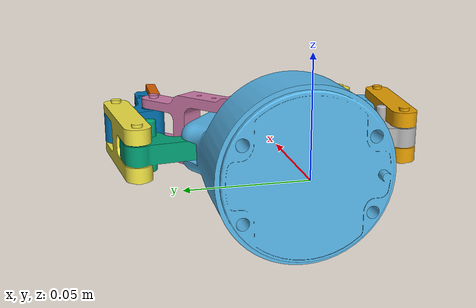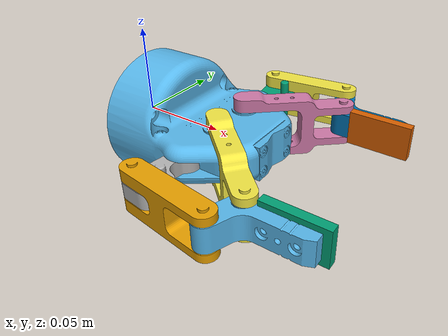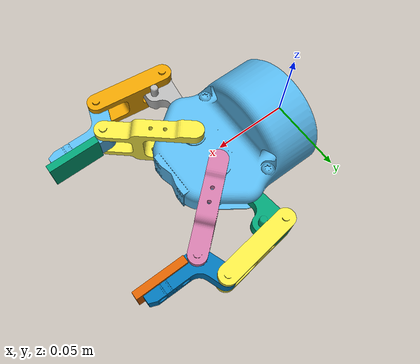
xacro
<?xml version="1.0"?>
<robot name="Robotiq_2F85" xmlns:xacro="http://ros.org/wiki/xacro" >

	<!-- On the first day, Darwin created the world -->
    <link name="world"/>

	<!-- Add Robotiq 2f-85 gripper -->
    <xacro:include filename="./robotiq_2f_model/robotiq_2f_85.urdf.xacro" />
	<xacro:robotiq_2f_85 parent="world" name="gripper" precise_collision="true" adaptive_transmission="true" with_pads="true" >
		<origin xyz="0 0 0" rpy="0 ${pi/2} 0"/>
	</xacro:robotiq_2f_85>

</robot>

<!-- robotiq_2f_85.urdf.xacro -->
<!-- WARNING: Inertias are wrong in this file. They need to be changed. -->

<robot xmlns:xacro="http://ros.org/wiki/xacro">

	<xacro:include filename="inertias.urdf.xacro" />

	<xacro:macro name="robotiq_2f_85" params="parent name precise_collision:=false adaptive_transmission:=false with_pads:=true *origin">

		<!-- base -->
		<joint name="${parent}_${name}_base_joint" type="fixed">
			<xacro:insert_block name="origin"/>
			<parent link="${parent}"/>
			<child link="${name}_base"/>
		</joint>
		<link name="${name}_base">
			<inertial>
				<mass value="0.5"/>
				<origin xyz="0 0 ${0.015*0.5}"  />
				<xacro:cylinder_inertia radius="0.04" length="0.045" mass="0.5"/>
			</inertial>
			<visual>
				<origin xyz="0 0 0" rpy="0 -1.5708 0"/>
				<geometry>
					<mesh filename="package://robotiq_2f_model/meshes/2f85/visual/base.obj"/>
				</geometry>
			</visual>
			<xacro:unless value="${precise_collision}">
			<collision>
				<origin xyz="0 0 0.015" rpy="0 0 0"/>
				<geometry>
					<cylinder radius="0.04" length="0.045"/>
				</geometry>
			</collision>
			<collision>
				<origin xyz="0 0 0.06" rpy="0 0 0"/>
				<geometry>
					<box size="0.03 0.03 0.06"/>
				</geometry>
			</collision>
			</xacro:unless>
			<xacro:if value="${precise_collision}">
			<collision>
				<geometry>
					<mesh filename="package://robotiq_2f_model/meshes/2f85/collision/base.stl" scale="0.001 0.001 0.001"/>
				</geometry>
			</collision>
			</xacro:if>
		</link>

		<!-- right finger -->

		<joint name="${name}_right_driver_joint" type="revolute">
			<origin xyz="0 0.0306011 0.054904" rpy="0 0 0"/>
			<parent link="${name}_base"/>
			<child link="${name}_right_driver"/>
			<axis xyz="1 0 0"/>

			<limit lower="${0 * 3.141592 / 180}" upper="${50 * 3.141592 / 180}" effort="176" velocity="${110 * 3.141592 / 180}" />
		</joint>
		<link name="${name}_right_driver">
			<inertial>
				<mass value="0.1"/>
				<origin xyz="0 0.02 0" rpy="0 0 0" />
				<xacro:box_inertia x_dim="0.02" y_dim="0.04" z_dim="0.02" mass="0.1"/>
			</inertial>
			<visual>
				<geometry>
					<mesh filename="package://robotiq_2f_model/meshes/2f85/visual/driver.obj" scale="0.001 0.001 0.001"/>
				</geometry>
			</visual>
			<xacro:unless value="${precise_collision}">
			<collision>
				<origin xyz="0 0.01 0" rpy="-0.1 0 0"/>
				<geometry>
					<box size="0.002 0.004 0.002"/>
				</geometry>
			</collision>
			</xacro:unless>
			<xacro:if value="${precise_collision}">
			<collision>
				<geometry>
					<mesh filename="package://robotiq_2f_model/meshes/2f85/collision/driver.stl" scale="0.001 0.001 0.001"/>
				</geometry>
			</collision>
			</xacro:if>
		</link>

		<xacro:unless value="${adaptive_transmission}">
		<joint name="${name}_right_coupler_joint" type="fixed">
			<origin xyz="0 0.0315 -0.0041" rpy="0 0 0"/>
			<parent link="${name}_right_driver"/>
			<child link="${name}_right_coupler"/>
		</joint>
		</xacro:unless>
		<xacro:if value="${adaptive_transmission}">
			<joint name="${name}_right_coupler_joint" type="revolute">
			<origin xyz="0 0.0315 -0.0041" rpy="0 0 0"/>
			<parent link="${name}_right_driver"/>
			<child link="${name}_right_coupler"/>
			<axis xyz="1 0 0"/>
			<limit lower="${-170 * 3.141592 / 180}" upper="${170 * 3.141592 / 180}" effort="176" velocity="${110 * 3.141592 / 180}" />
		</joint>
		</xacro:if>
		<link name="${name}_right_coupler">
			<inertial>
				<mass value="0.1"/>
				<origin xyz="0 0.0 0.025" rpy="-1.7 0 0"/>
				<xacro:box_inertia x_dim="0.03" y_dim="0.065" z_dim="0.02" mass="0.1"/>
			</inertial>
			<visual>
				<geometry>
					<mesh filename="package://robotiq_2f_model/meshes/2f85/visual/coupler.obj" scale="0.001 0.001 0.001"/>
				</geometry>
			</visual>
			<xacro:unless value="${precise_collision}">
			<collision>
				<origin xyz="0 0.0 0.025" rpy="-1.7 0 0"/>
				<geometry>
					<box size="0.03 0.065 0.02"/>
				</geometry>
			</collision>
			</xacro:unless>
			<xacro:if value="${precise_collision}">
				<collision>
					<geometry>
						<mesh filename="package://robotiq_2f_model/meshes/2f85/collision/coupler.stl" scale="0.001 0.001 0.001"/>
					</geometry>
				</collision>
			</xacro:if>
		</link>

		<joint name="${name}_right_follower_joint" type="revolute">
			<origin xyz="0 0.0061 0.0471" rpy="0 0 0"/>
			<parent link="${name}_right_coupler"/>
			<child link="${name}_right_follower"/>
			<axis xyz="1 0 0"/>
			<limit lower="${-170 * 3.141592 / 180}" upper="${170 * 3.141592 / 180}" effort="176" velocity="${110 * 3.141592 / 180}" />

			<xacro:unless value="${adaptive_transmission}">
			<mimic joint="${name}_right_driver_joint" multiplier="-1"/>
			</xacro:unless>
		</joint>
		<link name="${name}_right_follower">
			<inertial>
				<mass value="0.1"/>
				<origin xyz="0 -0.018 0.022" />
				<xacro:box_inertia x_dim="0.02" y_dim="0.015" z_dim="0.048" mass="0.1"/>
			</inertial>
			<visual>
				<geometry>
					<mesh filename="package://robotiq_2f_model/meshes/2f85/visual/follower.obj" scale="0.001 0.001 0.001"/>
				</geometry>
			</visual>
			<xacro:unless value="${precise_collision}">
			<collision>
				<origin xyz="0 -0.01 0.022" rpy="0 0 0"/>
				<geometry>
					<box size="0.002 0.0015 0.0048"/>
				</geometry>
			</collision>
			</xacro:unless>
			<xacro:if value="${precise_collision}">
			<collision>
				<geometry>
					<mesh filename="package://robotiq_2f_model/meshes/2f85/collision/follower.stl" scale="0.001 0.001 0.001"/>
				</geometry>
			</collision>
			</xacro:if>
		</link>

		<xacro:if value="${with_pads}">
			<joint name="${name}_right_pad_joint" type="fixed">
				<parent link="${name}_right_follower"/>
				<child link="${name}_right_pad"/>
			</joint>
			<link name="${name}_right_pad">
				<inertial>
					<mass value="0.1"/>
					<origin xyz="0 -0.022 0.031" />
					<xacro:box_inertia x_dim="0.02" y_dim="0.008" z_dim="0.036" mass="0.1"/>
				</inertial>
				<visual>
					<geometry>
						<mesh filename="package://robotiq_2f_model/meshes/2f85/visual/pad.obj" scale="0.001 0.001 0.001"/>
					</geometry>
				</visual>
				<xacro:unless value="${precise_collision}">
				<collision>
					<origin xyz="0 -0.022 0.031" rpy="0 0 0"/>
					<geometry>
						<box size="0.02 0.008 0.036"/>
					</geometry>
				</collision>
				</xacro:unless>
				<xacro:if value="${precise_collision}">
				<collision>
					<geometry>
						<mesh filename="package://robotiq_2f_model/meshes/2f85/collision/pad.stl" scale="0.001 0.001 0.001"/>
					</geometry>
				</collision>
				</xacro:if>
			</link>
		</xacro:if>

		<joint name="${name}_right_spring_link_joint" type="revolute">
			<origin xyz="0 0.012 0.0614" rpy="0 0 0"/>
			<parent link="${name}_base"/>
			<child link="${name}_right_spring_link"/>
			<axis xyz="1 0 0"/>
			<limit lower="${-170 * 3.141592 / 180}" upper="${170 * 3.141592 / 180}" effort="176" velocity="${110 * 3.141592 / 180}" />

			<xacro:unless value="${adaptive_transmission}">
			<mimic joint="${name}_right_driver_joint" multiplier="1"/>
			</xacro:unless>
		</joint>
		<link name="${name}_right_spring_link">
			<inertial>
				<mass value="0.1"/>
				<origin xyz="0 0.018 0.018" rpy="-0.7068 0 0"/>
				<xacro:box_inertia x_dim="0.04" y_dim="0.02" z_dim="0.065" mass="0.1"/>
			</inertial>
			<visual>
				<geometry>
					<mesh filename="package://robotiq_2f_model/meshes/2f85/visual/spring_link.obj" scale="0.001 0.001 0.001"/>
				</geometry>
			</visual>
			<xacro:unless value="${precise_collision}">
			<collision>
				<origin xyz="0 0.025 0.015" rpy="-0.7068 0 0"/>
				<geometry>
					<box size="0.004 0.002 0.0065"/>
				</geometry>
			</collision>
			</xacro:unless>
			<xacro:if value="${precise_collision}">
			<collision>
				<geometry>
					<mesh filename="package://robotiq_2f_model/meshes/2f85/collision/spring_link.stl" scale="0.001 0.001 0.001"/>
				</geometry>
			</collision>
			</xacro:if>
		</link>

		<!-- left finger -->

		<joint name="${name}_left_driver_joint" type="revolute">
			<origin xyz="0 -0.0306011 0.054904" rpy="0 0 3.141592653589793"/>
			<parent link="${name}_base"/>
			<child link="${name}_left_driver"/>
			<axis xyz="1 0 0"/>
			<limit lower="${0 * 3.141592 / 180}" upper="${50 * 3.141592 / 180}" effort="176" velocity="${110 * 3.141592 / 180}" />

			<xacro:unless value="${adaptive_transmission}">
			<mimic joint="${name}_right_driver_joint" multiplier="1"/>
			</xacro:unless>
		</joint>
		<link name="${name}_left_driver">
			<inertial>
				<mass value="0.1"/>
				<origin xyz="0 0.02 0" rpy="0 0 0" />
				<xacro:box_inertia x_dim="0.02" y_dim="0.04" z_dim="0.02" mass="0.1"/>
			</inertial>
			<visual>
				<geometry>
					<mesh filename="package://robotiq_2f_model/meshes/2f85/visual/driver.obj" scale="0.001 0.001 0.001"/>
				</geometry>
			</visual>
			<xacro:unless value="${precise_collision}">
			<collision>
				<origin xyz="0 0.01 0" rpy="-0.1 0 0"/>
				<geometry>
					<box size="0.002 0.004 0.002"/>
				</geometry>
			</collision>
			</xacro:unless>
			<xacro:if value="${precise_collision}">
			<collision>
				<geometry>
					<mesh filename="package://robotiq_2f_model/meshes/2f85/collision/driver.stl" scale="0.001 0.001 0.001"/>
				</geometry>
			</collision>
			</xacro:if>
		</link>

		<xacro:unless value="${adaptive_transmission}">
		<joint name="${name}_left_coupler_joint" type="fixed">
			<origin xyz="0 0.0315 -0.0041" rpy="0 0 0"/>
			<parent link="${name}_left_driver"/>
			<child link="${name}_left_coupler"/>
		</joint>
		</xacro:unless>
		<xacro:if value="${adaptive_transmission}">
			<joint name="${name}_left_coupler_joint" type="revolute">
			<origin xyz="0 0.0315 -0.0041" rpy="0 0 0"/>
			<parent link="${name}_left_driver"/>
			<child link="${name}_left_coupler"/>
			<axis xyz="1 0 0"/>
			<limit lower="${-170 * 3.141592 / 180}" upper="${170 * 3.141592 / 180}" effort="176" velocity="${110 * 3.141592 / 180}" />
		</joint>
		</xacro:if>
		<link name="${name}_left_coupler">
			<inertial>
				<mass value="0.1"/>
				<origin xyz="0 0.0 0.025" rpy="-1.7 0 0"/>
				<xacro:box_inertia x_dim="0.03" y_dim="0.065" z_dim="0.02" mass="0.1"/>
			</inertial>
			<visual>
				<geometry>
					<mesh filename="package://robotiq_2f_model/meshes/2f85/visual/coupler.obj" scale="0.001 0.001 0.001"/>
				</geometry>
			</visual>
			<xacro:unless value="${precise_collision}">
			<collision>
				<origin xyz="0 0.0 0.025" rpy="-1.7 0 0"/>
				<geometry>
					<box size="0.03 0.065 0.02"/>
				</geometry>
			</collision>
			</xacro:unless>
			<xacro:if value="${precise_collision}">
				<collision>
					<geometry>
						<mesh filename="package://robotiq_2f_model/meshes/2f85/collision/coupler.stl" scale="0.001 0.001 0.001"/>
					</geometry>
				</collision>
			</xacro:if>
		</link>

		<joint name="${name}_left_follower_joint" type="revolute">
			<origin xyz="0 0.0061 0.0471" rpy="0 0 0"/>
			<parent link="${name}_left_coupler"/>
			<child link="${name}_left_follower"/>
			<axis xyz="1 0 0"/>
			<limit lower="${-170 * 3.141592 / 180}" upper="${170 * 3.141592 / 180}" effort="176" velocity="${110 * 3.141592 / 180}" />

			<xacro:unless value="${adaptive_transmission}">
			<mimic joint="${name}_right_driver_joint" multiplier="-1"/>
			</xacro:unless>
		</joint>
		<link name="${name}_left_follower">
			<inertial>
				<mass value="0.1"/>
				<origin xyz="0 -0.018 0.022" />
				<xacro:box_inertia x_dim="0.02" y_dim="0.015" z_dim="0.048" mass="0.1"/>
			</inertial>
			<visual>
				<geometry>
					<mesh filename="package://robotiq_2f_model/meshes/2f85/visual/follower.obj" scale="0.001 0.001 0.001"/>
				</geometry>
			</visual>
			<xacro:unless value="${precise_collision}">
			<collision>
				<origin xyz="0 -0.01 0.022" rpy="0 0 0"/>
				<geometry>
					<box size="0.002 0.0015 0.0048"/>
				</geometry>
			</collision>
			</xacro:unless>
			<xacro:if value="${precise_collision}">
			<collision>
				<geometry>
					<mesh filename="package://robotiq_2f_model/meshes/2f85/collision/follower.stl" scale="0.001 0.001 0.001"/>
				</geometry>
			</collision>
			</xacro:if>
		</link>

		<xacro:if value="${with_pads}">
			<joint name="${name}_left_pad_joint" type="fixed">
				<parent link="${name}_left_follower"/>
				<child link="${name}_left_pad"/>
			</joint>
			<link name="${name}_left_pad">
				<inertial>
					<mass value="0.1"/>
					<origin xyz="0 -0.022 0.031" />
					<xacro:box_inertia x_dim="0.02" y_dim="0.008" z_dim="0.036" mass="0.1"/>
				</inertial>
				<visual>
					<geometry>
						<mesh filename="package://robotiq_2f_model/meshes/2f85/visual/pad.obj" scale="0.001 0.001 0.001"/>
					</geometry>
				</visual>
				<xacro:unless value="${precise_collision}">
				<collision>
					<origin xyz="0 -0.022 0.031" rpy="0 0 0"/>
					<geometry>
						<box size="0.02 0.008 0.036"/>
					</geometry>
				</collision>
				</xacro:unless>
				<xacro:if value="${precise_collision}">
				<collision>
					<geometry>
						<mesh filename="package://robotiq_2f_model/meshes/2f85/collision/pad.stl" scale="0.001 0.001 0.001"/>
					</geometry>
				</collision>
				</xacro:if>
			</link>
		</xacro:if>

		<joint name="${name}_left_spring_link_joint" type="revolute">
			<origin xyz="0 -0.012 0.0614" rpy="0 0 3.141592653589793"/>
			<parent link="${name}_base"/>
			<child link="${name}_left_spring_link"/>
			<axis xyz="1 0 0"/>
			<limit lower="${-170 * 3.141592 / 180}" upper="${170 * 3.141592 / 180}" effort="176" velocity="${110 * 3.141592 / 180}" />

			<xacro:unless value="${adaptive_transmission}">
			<mimic joint="${name}_right_driver_joint" multiplier="1"/>
			</xacro:unless>
		</joint>
		<link name="${name}_left_spring_link">
			<inertial>
				<mass value="0.1"/>
				<origin xyz="0 0.018 0.018" rpy="-0.7068 0 0"/>
				<xacro:box_inertia x_dim="0.04" y_dim="0.02" z_dim="0.065" mass="0.1"/>
			</inertial>
			<visual>
				<geometry>
					<mesh filename="package://robotiq_2f_model/meshes/2f85/visual/spring_link.obj" scale="0.001 0.001 0.001"/>
				</geometry>
			</visual>
			<xacro:unless value="${precise_collision}">
			<collision>
				<origin xyz="0 0.025 0.015" rpy="-0.7068 0 0"/>
				<geometry>
					<box size="0.004 0.002 0.0065"/>
				</geometry>
			</collision>
			</xacro:unless>
			<xacro:if value="${precise_collision}">
			<collision>
				<geometry>
					<mesh filename="package://robotiq_2f_model/meshes/2f85/collision/spring_link.stl" scale="0.001 0.001 0.001"/>
				</geometry>
			</collision>
			</xacro:if>
		</link>

	</xacro:macro>
</robot>
